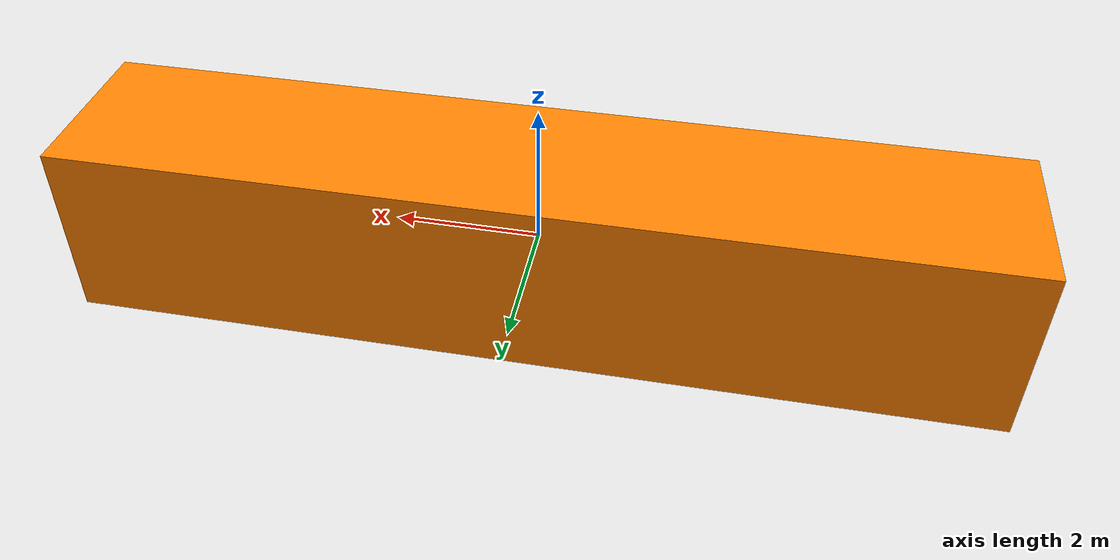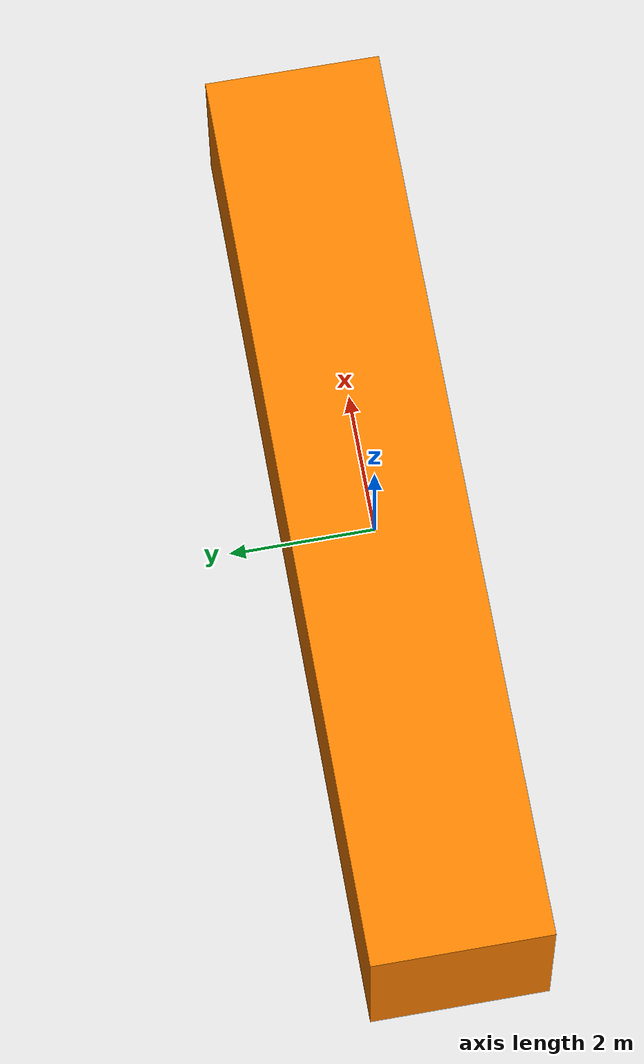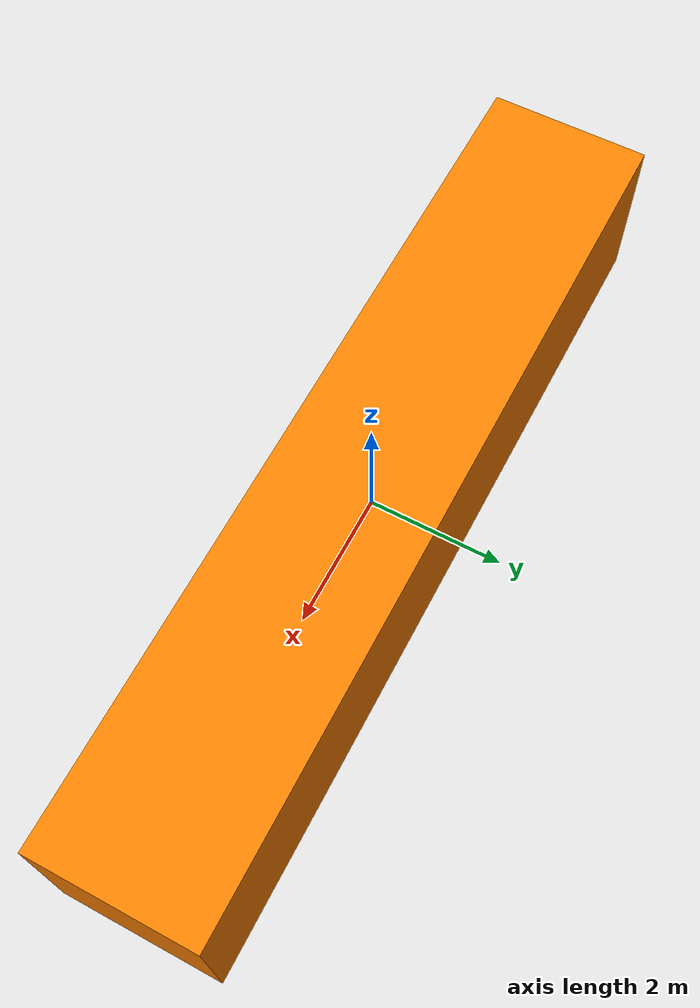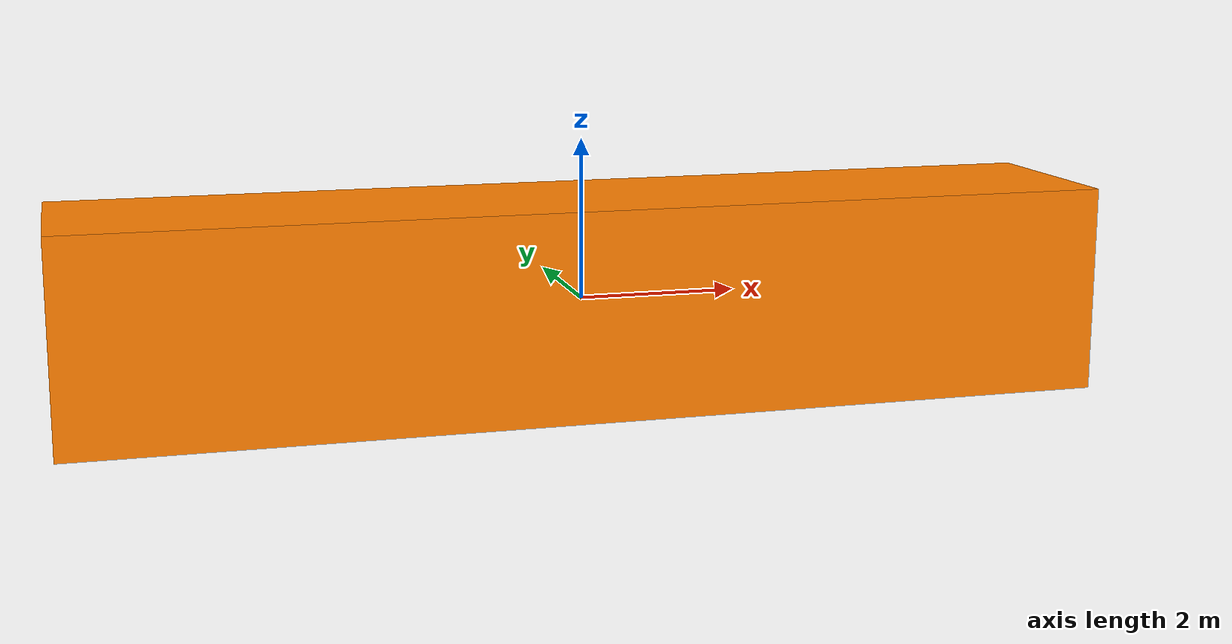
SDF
<?xml version="1.0" ?>
<sdf version="1.6">
  <model name="shipping_container">
    <plugin
        filename="gz-marine1-hydrodynamics-system"
        name="gz::sim::systems::Hydrodynamics">

        <markers>
          <update_rate>10</update_rate>
          <water_patch>1</water_patch>
          <waterline>1</waterline>
          <underwater_surface>1</underwater_surface>
        </markers>
    </plugin>
    <link name="base_link">
      <visual name="visual">
        <geometry>
          <box>
            <size>12.9 2.44 2.59</size>
          </box>
        </geometry>
        <material>
          <ambient>1.0 0.5 0.0 1.0</ambient>
          <diffuse>1.0 0.5 0.0 1.0</diffuse>
          <specular>0.8 0.8 0.8 1.0</specular>
        </material>
      </visual>
      <collision name="collision">
        <geometry>
          <box>
            <size>12.9 2.44 2.59</size>
          </box>
        </geometry>
      </collision>
      <inertial>
        <pose>0 0 0 0 0 0</pose>
        <mass>20000</mass>
        <inertia>
          <ixx>21102.83333</ixx>
          <ixy>0.0</ixy>
          <ixz>0.0</ixz>
          <iyy>288530.1667</iyy>
          <iyz>0.0</iyz>
          <izz>287272.6667</izz>
        </inertia>
      </inertial>
    </link>
  </model>
</sdf>
